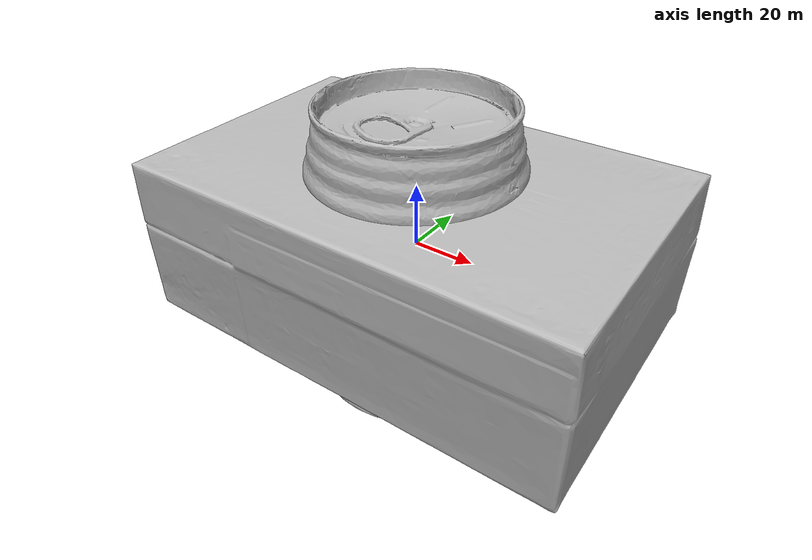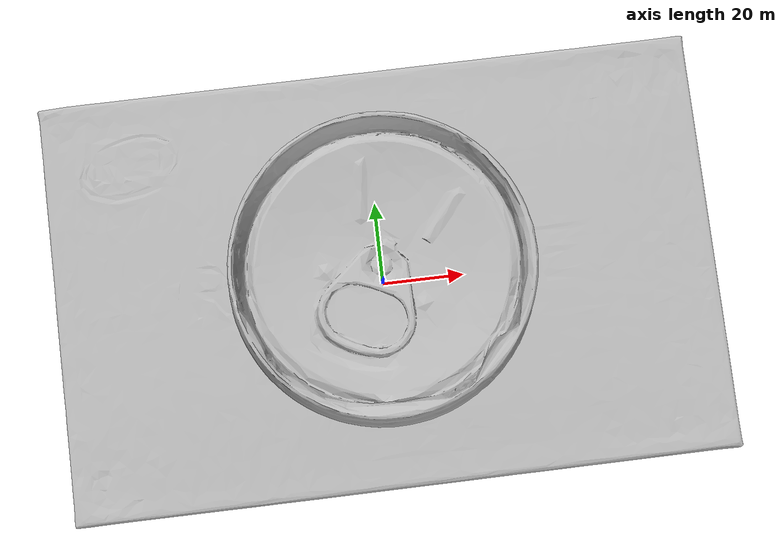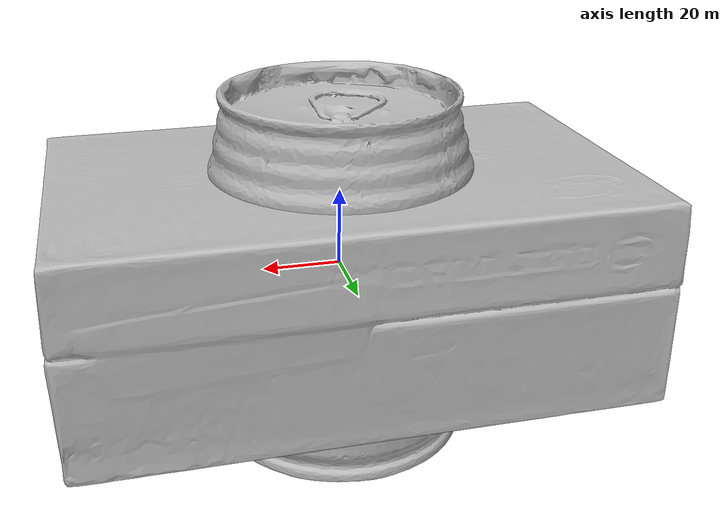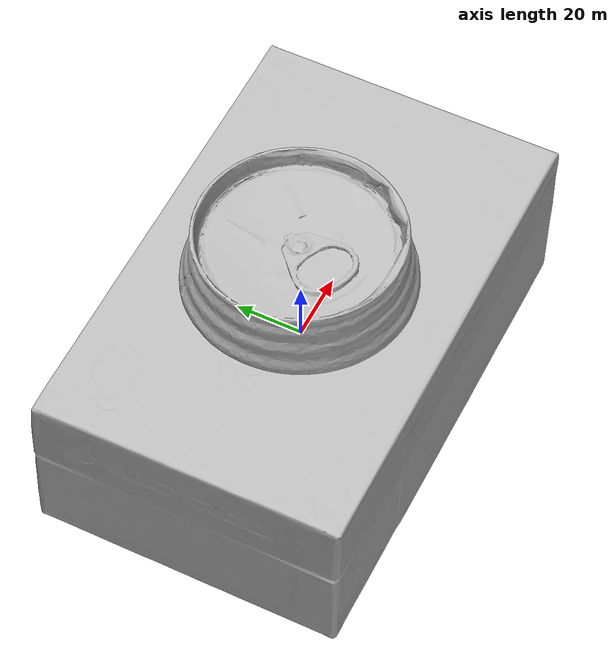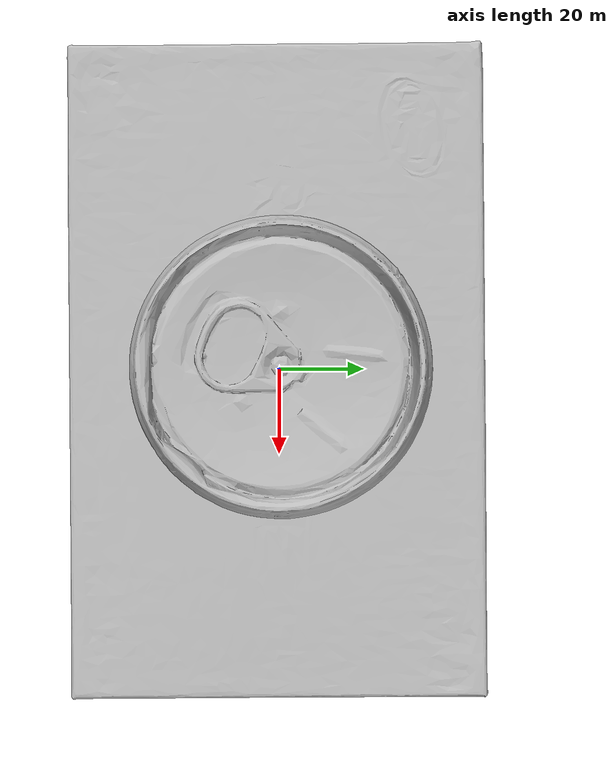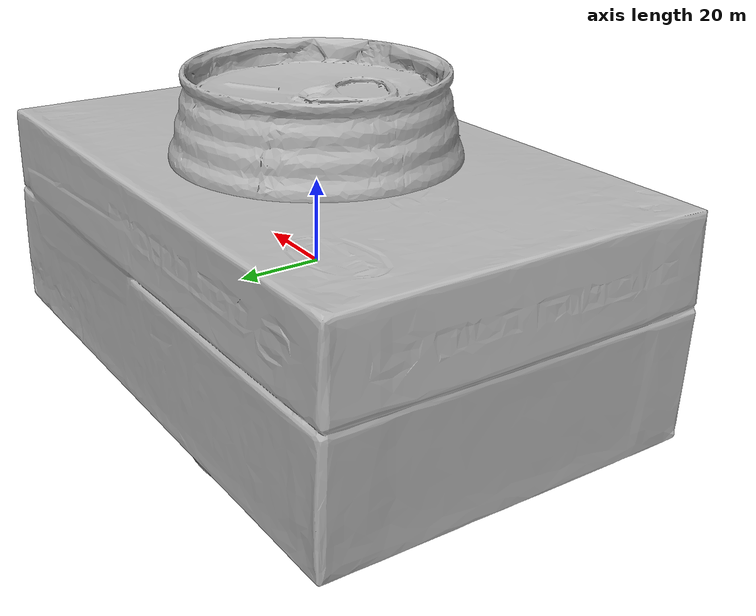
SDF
<sdf version="1.4">
 <world name="default">
  <light name="light1" type="point">
   <pose>0 0 1 0 0 0</pose>
   <diffuse>3 3 3 1</diffuse>
   <specular>3 3 3 1</specular>
  </light>
  <light name="light2" type="point">
   <pose>0 0.5 2 0 0 0</pose>
   <diffuse>1 1 1 1</diffuse>
   <specular>1 1 1 1</specular>
  </light>
  <light name="light3" type="point">
   <pose>0 0.5 2 0 0 0</pose>
   <diffuse>3 3 3 1</diffuse>
   <specular>3 3 3 1</specular>
  </light>
  <scene><ambient>0.7 0.7 0.7</ambient></scene>
  <model name="box1">
   <link name="link_box1">
    <collision name="default">
     <geometry>
      <mesh><uri>model://realsense_box/collision_meshes/collision.obj</uri><scale>1.0 1.0 1.0</scale></mesh>
     </geometry>
     <surface><friction><ode><mu>0.5</mu><mu2>0.5</mu2></ode></friction></surface>
    </collision>
    <visual name="default">
     <geometry>
      <mesh><uri>model://realsense_box/visual_meshes/visual.dae</uri><scale>1.0 1.0 1.0</scale></mesh>
     </geometry>
    </visual>
    <inertial>
     <mass>0.9783616662025452</mass>
     <pose>4.0744838770478964e-05 8.587493357481435e-05 -2.4153794583980925e-05 -0.00012602841694551038 -0.006358939977979225 0.005012324824875736</pose>
     <inertia>
      <ixx>0.0009306729</ixx>
      <iyy>0.0019425071</iyy>
      <izz>0.002403061</izz>
      <ixy>0</ixy>
      <ixz>0</ixz>
      <iyz>0</iyz>
     </inertia>
    </inertial>
   </link>
   <pose>0.2801050543785095 -0.2998393774032593 0.026866454631090164 0.008663003351585968 0.012170013755324761 -0.0011765079191642708</pose>
  </model>
  <model name="box2">
   <link name="link_box2">
    <collision name="default">
     <geometry>
      <mesh><uri>model://wooden_puzzle2/collision_meshes/collision.obj</uri><scale>1.0 1.0 1.0</scale></mesh>
     </geometry>
     <surface><friction><ode><mu>0.5</mu><mu2>0.5</mu2></ode></friction></surface>
    </collision>
    <visual name="default">
     <geometry>
      <mesh><uri>model://wooden_puzzle2/visual_meshes/visual.dae</uri><scale>1.0 1.0 1.0</scale></mesh>
     </geometry>
    </visual>
    <inertial>
     <mass>0.024048319086432457</mass>
     <pose>2.7402536943554878e-05 4.997663199901581e-05 6.587122334167361e-05 -0.19203048535200862 0.6112800928970119 -0.6338660341545117</pose>
     <inertia>
      <ixx>4.470326e-06</ixx>
      <iyy>4.593511e-06</iyy>
      <izz>4.528165e-06</izz>
      <ixy>0</ixy>
      <ixz>0</ixz>
      <iyz>0</iyz>
     </inertia>
    </inertial>
   </link>
   <pose>0.09989476203918457 -0.3200235962867737 0.01691773347556591 0.020848647100831064 0.0007210426646944081 0.00023848461423957082</pose>
  </model>
  <model name="can1">
   <link name="link_can1">
    <collision name="default">
     <geometry>
      <mesh><uri>model://redbull/collision_meshes/collision.obj</uri><scale>1.0 1.0 1.0</scale></mesh>
     </geometry>
     <surface><friction><ode><mu>0.5</mu><mu2>0.5</mu2></ode></friction></surface>
    </collision>
    <visual name="default">
     <geometry>
      <mesh><uri>model://redbull/visual_meshes/visual.dae</uri><scale>1.0 1.0 1.0</scale></mesh>
     </geometry>
    </visual>
    <inertial>
     <mass>0.19214749336242676</mass>
     <pose>-2.212707477156073e-05 -0.00012659536150749773 -0.0006860988214612007 0.0011364686928787662 -0.01080099531045839 0.5859333437288349</pose>
     <inertia>
      <ixx>0.00018066002</ixx>
      <iyy>0.0001808125</iyy>
      <izz>0.0001072083</izz>
      <ixy>0</ixy>
      <ixz>0</ixz>
      <iyz>0</iyz>
     </inertia>
    </inertial>
   </link>
   <pose>0.010254577733576298 0.3205898404121399 0.04638400673866272 -0.010404214495045451 0.007312355081168742 -1.7601614555927733e-05</pose>
  </model>
  <model name="can2">
   <link name="link_can2">
    <collision name="default">
     <geometry>
      <mesh><uri>model://pepsi/collision_meshes/collision.obj</uri><scale>1.0 1.0 1.0</scale></mesh>
     </geometry>
     <surface><friction><ode><mu>0.5</mu><mu2>0.5</mu2></ode></friction></surface>
    </collision>
    <visual name="default">
     <geometry><mesh><uri>model://pepsi/visual_meshes/visual.dae</uri><scale>1.0 1.0 1.0</scale></mesh></geometry>
    </visual>
    <inertial>
     <mass>0.3079187572002411</mass>
     <pose>-7.5590331107378e-05 2.9931279641459696e-05 -0.0003384356386959553 -0.0010678548810066889 -0.0021735327588889423 0.5674125845328797</pose>
     <inertia>
      <ixx>0.0006134332</ixx>
      <iyy>0.0006129863</iyy>
      <izz>0.0001305606</izz>
      <ixy>0</ixy>
      <ixz>0</ixz>
      <iyz>0</iyz>
     </inertia>
    </inertial>
   </link>
   <pose>-0.09998182952404022 0.28995177149772644 0.0744962990283966 -1.648941748335817e-05 1.8141505283127536e-06 -4.430365484230213e-06</pose>
  </model>
 </world>
</sdf>
